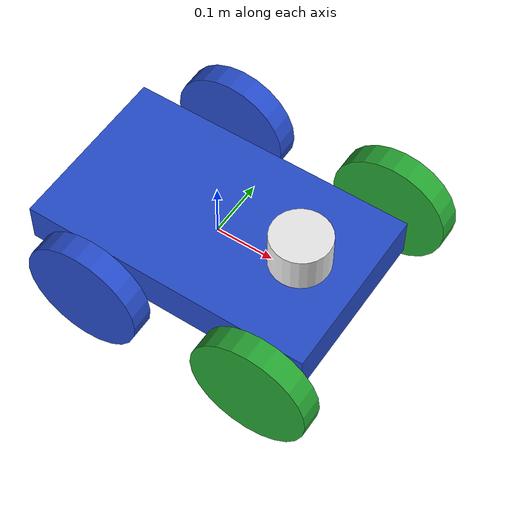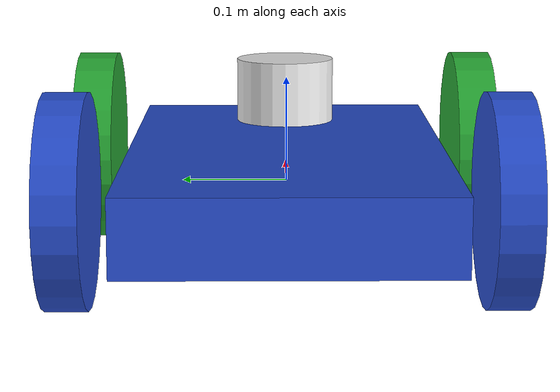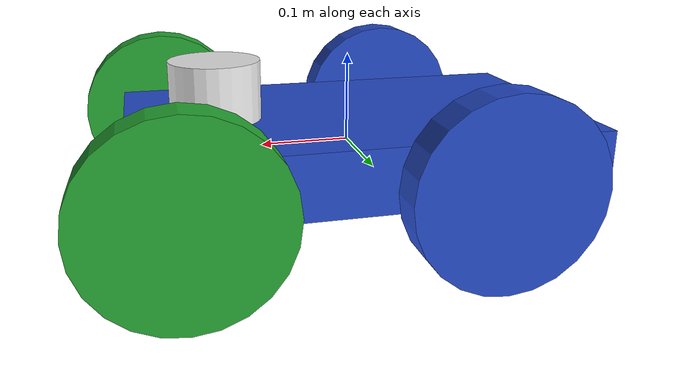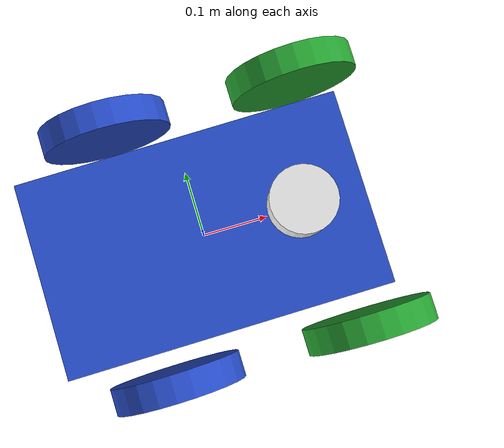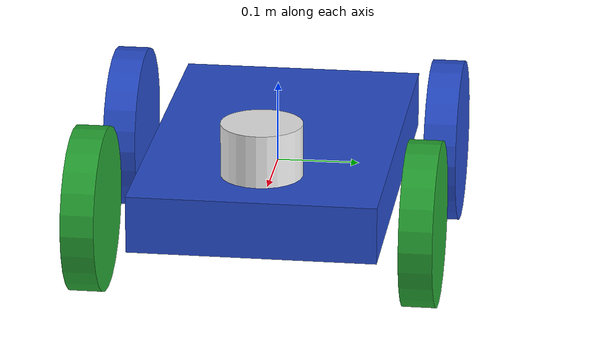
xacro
<?xml version="1.0" ?>
<robot name="rover" xmlns:xacro="http://www.ros.org/wiki/xacro">

  <xacro:include filename="$(find rover_bot)/urdf/materials.xacro" />
  <xacro:include filename="$(find rover_bot)/urdf/rover.gazebo" />
  <xacro:include filename="$(find rover_bot)/urdf/macros.xacro" />

    <xacro:macro name="wheel_transmission" params="name">
    <transmission name="${name}_transmission" type="SimpleTransmission">
      <type>transmission_interface/SimpleTransmission</type>
      <joint name="${name}_joint">
        <hardwareInterface>hardware_interface/VelocityJointInterface</hardwareInterface>
      </joint>
      <actuator name="${name}_motor">
        <hardwareInterface>hardware_interface/VelocityJointInterface</hardwareInterface>
        <!--hardware_interface/EffortJointInterface-->
        <mechanicalReduction>10</mechanicalReduction>
      </actuator>
    </transmission>
  </xacro:macro>

<link name="dummy">
   </link>

  <link name="link_chassis">
    <!-- pose and inertial -->
    <pose>0 0 0.1 0 0 0</pose>
    <inertial>
      <mass value="5"/>
      <origin rpy="0 0 0" xyz="0 0 0.1"/>
      <inertia ixx="0.0395416666667" ixy="0" ixz="0" iyy="0.106208333333" iyz="0" izz="0.106208333333"/>
    </inertial>
    <!-- body -->
    <collision name="collision_chassis">
      <geometry>
        <box size="0.5 0.3 0.07"/>
      </geometry>
    </collision>
    <visual>
      <origin rpy="0 0 0" xyz="0 0 0"/>
      <geometry>
        <box size="0.5 0.3 0.07"/>
      </geometry>
      <material name="blue"/>
    </visual>
    <!-- caster front -->

  </link>

    <joint name="dummy_joint" type="fixed">
     <parent link="dummy"/>
     <child link="link_chassis"/>
   </joint>

  <link name="sensor_laser">
    <inertial>
      <origin xyz="0 0 0" rpy="0 0 0" />
      <mass value="1" />
      <xacro:cylinder_inertia mass="1" r="0.05" l="0.1" />
    </inertial>

    <visual>
      <origin xyz="0 0 0" rpy="0 0 0" />
      <geometry>
        <cylinder radius="0.05" length="0.1"/>
      </geometry>
      <material name="white" />
    </visual>

    <collision>
      <origin xyz="0 0 0" rpy="0 0 0"/>
      <geometry>
        <cylinder radius="0.05" length="0.1"/>
      </geometry>
    </collision>
  </link>

  <joint name="joint_sensor_laser" type="fixed">
    <origin xyz="0.15 0 0.05" rpy="0 0 0"/>
    <parent link="link_chassis"/>
    <child link="sensor_laser"/>
  </joint>

  <xacro:joint_wheel name="right_back_wheel_joint" child="right_back_wheel" origin_xyz="-0.1 0.20 0" />
  <xacro:wheel_transmission name="right_back_wheel" />
  <xacro:link_wheel name="right_back_wheel" />

  <xacro:joint_wheel name="left_back_wheel_joint" child="left_back_wheel" origin_xyz="-0.1 -0.20 0" />
  <xacro:wheel_transmission name="left_back_wheel" />
  <xacro:link_wheel name="left_back_wheel" />

  <xacro:joint_wheel name="right_front_wheel_joint" child="right_front_wheel" origin_xyz="0.2 0.20 0" />
  <xacro:wheel_transmission name="right_front_wheel" />
  <xacro:link_wheel name="right_front_wheel" />

  <xacro:joint_wheel name="left_front_wheel_joint" child="left_front_wheel" origin_xyz="0.2 -0.20 0" />
  <xacro:wheel_transmission name="left_front_wheel" />
  <xacro:link_wheel name="left_front_wheel" />

</robot>

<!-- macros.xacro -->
<robot xmlns:xacro="http://www.ros.org/wiki/xacro">
    <xacro:macro name="link_wheel" params="name">
        <link name="${name}">
            <inertial>
              <mass value="0.2"/>
              <origin rpy="0 1.5707 1.5707" xyz="0 0 0"/>
              <inertia ixx="0.000526666666667" ixy="0" ixz="0" iyy="0.000526666666667" iyz="0" izz="0.001"/>
            </inertial>
            <collision name="${name}_collision">
              <origin rpy="0 1.5707 1.5707" xyz="0 0 0"/>
              <geometry>
                <cylinder length="0.04" radius="0.1"/>
              </geometry>
            </collision>
            <visual name="${name}_visual">
              <origin rpy="0 1.5707 1.5707" xyz="0 0 0"/>
              <geometry>
                <cylinder length="0.04" radius="0.1"/>
              </geometry>
            </visual>
        </link>
    </xacro:macro>

    <xacro:macro name="joint_wheel" params="name child origin_xyz">

      <joint name="${name}" type="continuous">
        <origin rpy="0 0 0" xyz="${origin_xyz}"/>
        <child link="${child}"/>
        <parent link="link_chassis"/>
        <axis rpy="0 0 0" xyz="0 1 0"/>
        <limit effort="10000" velocity="1000"/>
        <joint_properties damping="1.0" friction="1.0"/>
      </joint>
    </xacro:macro>

    <xacro:macro name="cylinder_inertia" params="mass r l">
      <inertia  ixx="${mass*(3*r*r+l*l)/12}" ixy = "0" ixz = "0"
                iyy="${mass*(3*r*r+l*l)/12}" iyz = "0"
                izz="${mass*(r*r)/2}" />
    </xacro:macro>
</robot>
